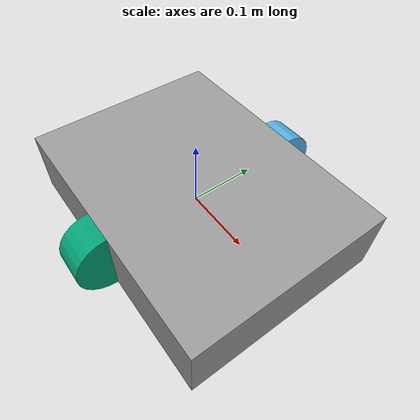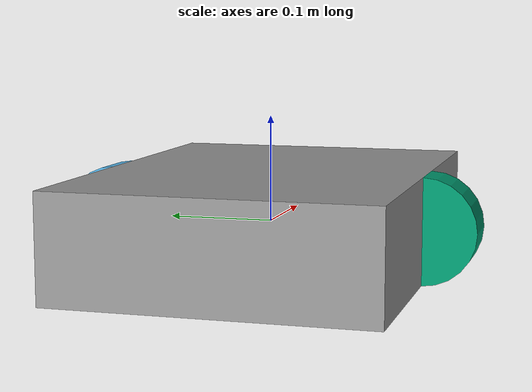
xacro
<?xml version="1.0"?>
<robot name="diffbot" xmlns:xacro="http://www.ros.org/wiki/xacro">

  <!-- Base -->
  <link name="base_link">
    <visual>
      <geometry><box size="0.4 0.3 0.1"/></geometry>
      <material name="gray"><color rgba="0.6 0.6 0.6 1"/></material>
    </visual>
    <collision><geometry><box size="0.4 0.3 0.1"/></geometry></collision>
    <inertial><mass value="5"/><inertia ixx="0.02" iyy="0.02" izz="0.02"/></inertial>
  </link>

  <!-- Left wheel -->
  <link name="left_wheel">
    <visual><geometry><cylinder length="0.05" radius="0.05"/></geometry></visual>
  </link>
  <joint name="left_wheel_joint" type="continuous">
    <parent link="base_link"/>
    <child link="left_wheel"/>
    <origin xyz="0 0.15 0" rpy="0 1.5707 0"/>
    <axis xyz="0 1 0"/>
  </joint>

  <!-- Right wheel -->
  <link name="right_wheel">
    <visual><geometry><cylinder length="0.05" radius="0.05"/></geometry></visual>
  </link>
  <joint name="right_wheel_joint" type="continuous">
    <parent link="base_link"/>
    <child link="right_wheel"/>
    <origin xyz="0 -0.15 0" rpy="0 1.5707 0"/>
    <axis xyz="0 1 0"/>
  </joint>

  <!-- Differential-drive plugin -->
  <gazebo>
    <plugin name="diff_drive" filename="libgazebo_ros_diff_drive.so">
      <ros><namespace>/diffbot</namespace></ros>
      <update_rate>30</update_rate>
      <left_joint>left_wheel_joint</left_joint>
      <right_joint>right_wheel_joint</right_joint>
      <wheel_separation>0.3</wheel_separation>
      <wheel_diameter>0.1</wheel_diameter>
      <cmd_vel_topic>cmd_vel</cmd_vel_topic>
      <odom_topic>odom</odom_topic>
      <odom_frame>odom</odom_frame>
      <base_frame>base_link</base_frame>
    </plugin>
  </gazebo>

</robot>
